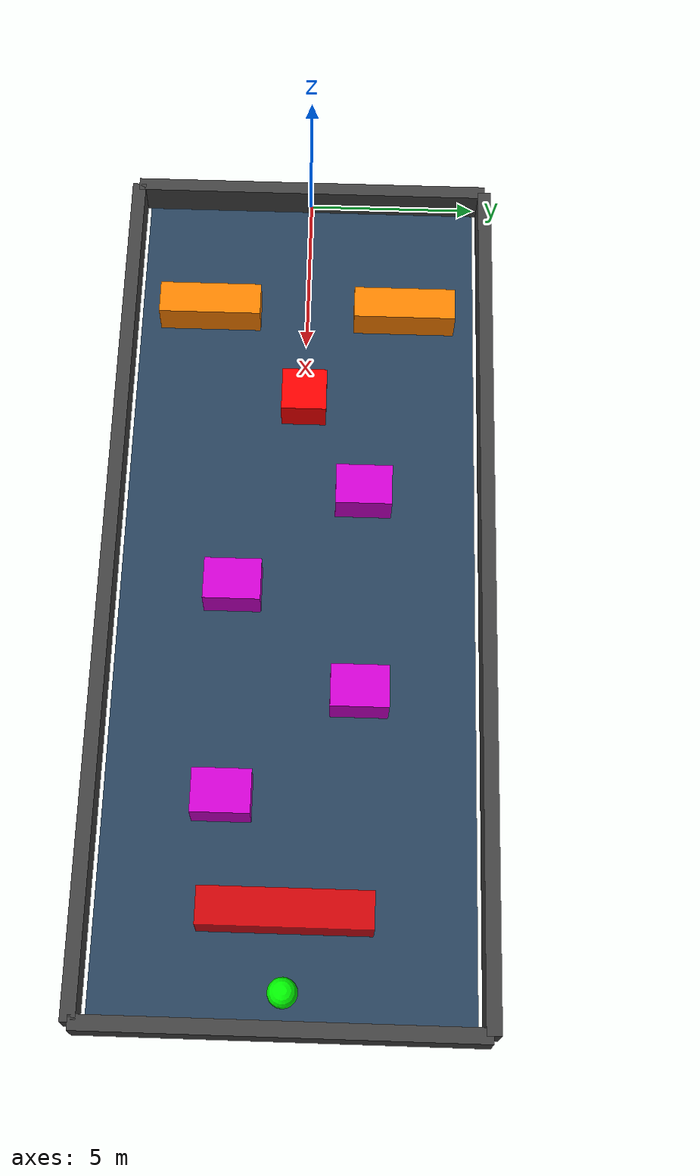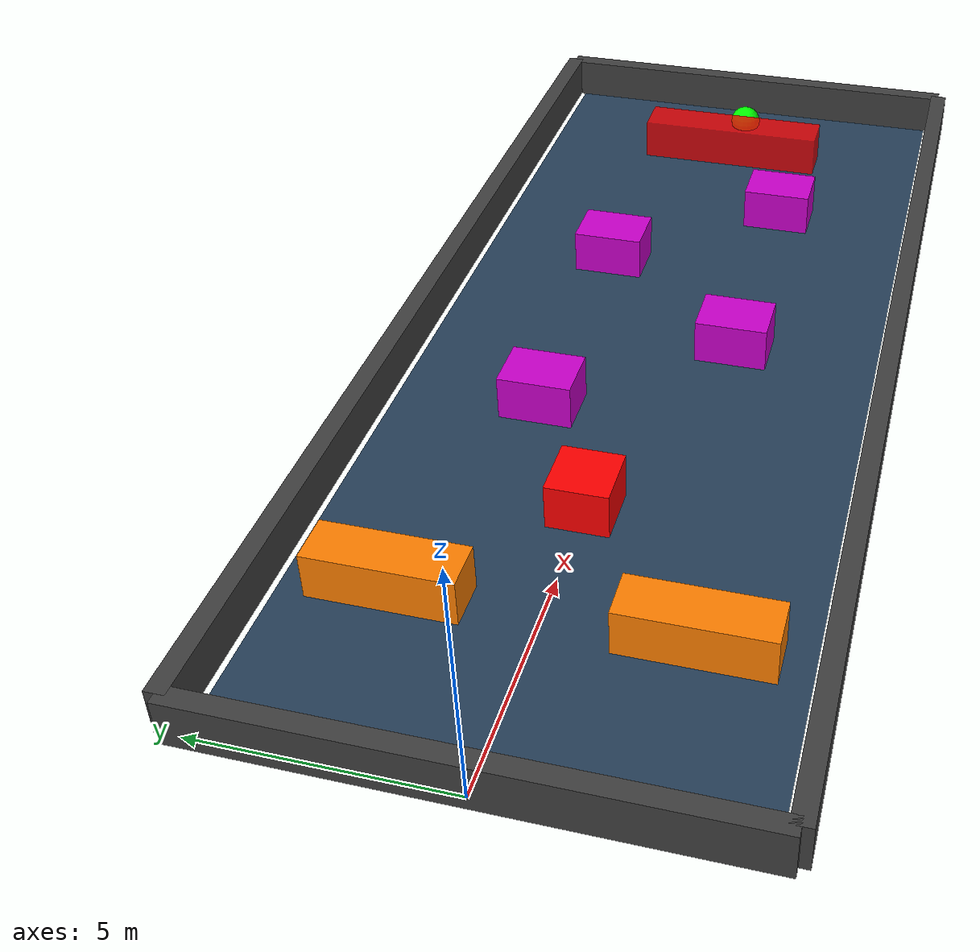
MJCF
<mujoco model="Empty_Corridor2_25m">

  <!-- COMPILER + OPTION -->
  <compiler angle="radian" coordinate="local" autolimits="true"/>
  <option timestep="0.01" cone="elliptic" integrator="RK4" gravity="0 0 -9.81"/>

  <!-- VISUAL STYLE (bunker style) -->
  <visual>
    <headlight diffuse="0.6 0.6 0.6"
               ambient="0.1 0.1 0.1"
               specular="0 0 0"/>

    <rgba haze="0.15 0.25 0.35 1"/>

    <global azimuth="135"
            elevation="-28"/>
  </visual>

  <!-- ASSETS (ground texture style giống bunker) -->
  <asset>
    <texture type="skybox"
             builtin="gradient"
             rgb1="0.3 0.5 0.7"
             rgb2="0 0 0"
             width="512"
             height="3072"/>

    <texture type="2d"
             name="groundplane"
             builtin="checker"
             mark="edge"
             rgb1="0.2 0.3 0.4"
             rgb2="0.1 0.2 0.3"
             markrgb="0.8 0.8 0.8"
             width="300"
             height="300"/>

    <material name="groundplane"
              texture="groundplane"
              texuniform="true"
              texrepeat="5 5"
              reflectance="0.2"/>
  </asset>

  <!-- WORLD -->
  <worldbody>

    <!-- LIGHT -->
    <light name="spotlight"
           pos="0 0 100"
           mode="targetbodycom"
           target="goal"
           castshadow="false"/>

    <!-- FLOOR (giữ nguyên nhưng đổi style bunker) -->
    <geom name="floor"
          type="plane"
          pos="12.5 0 0"
          size="12.5 5 0.05"
          material="groundplane"
          conaffinity="1"
          condim="3"/>

        <!-- WALLS -->
        <geom type="box" pos="12.5 5.3 0.5" size="12.5 0.2 0.5" rgba="0.25 0.25 0.25 1"/>
        <geom type="box" pos="12.5 -5.3 0.5" size="12.5 0.2 0.5" rgba="0.25 0.25 0.25 1"/>
        <geom type="box" pos="0 0 0.5" size="0.2 5.3 0.5" rgba="0.25 0.25 0.25 1"/>
        <geom type="box" pos="25 0 0.5" size="0.2 5.3 0.5" rgba="0.25 0.25 0.25 1"/>

        <!-- SAME OBSTACLES - SHUFFLED -->

        <!-- trước: mid left/right -> giờ chuyển lên đầu -->
        <geom type="box" pos="4  2.9 0.5" size="0.5 1.5 0.5" rgba="1 0.5 0 1"/>
        <geom type="box" pos="4 -2.9 0.5" size="0.5 1.5 0.5" rgba="1 0.5 0 1"/>

        <!-- trước: single center -> chuyển sang 9 -->
        <geom type="box" pos="7 0 0.5" size="0.65 0.65 0.5" rgba="1 0 0 1"/>

        <!-- trước: hard zone 16–28 -> giữ nhưng đổi pattern -->
        <geom type="box" pos="10  1.8 0.5" size="0.6 0.8 0.5" rgba="0.8 0 0.8 1"/>
        <geom type="box" pos="13 -1.8 0.5" size="0.6 0.8 0.5" rgba="0.8 0 0.8 1"/>
        <geom type="box" pos="16  1.8 0.5" size="0.6 0.8 0.5" rgba="0.8 0 0.8 1"/>
        <geom type="box" pos="19 -1.8 0.5" size="0.6 0.8 0.5" rgba="0.8 0 0.8 1"/>

        <!-- trước: cuối gần goal -> chuyển lên mid-late -->
        <geom type="box" pos="22 0 0.5" size="0.5 2.3 0.5" rgba="1 0 0 0.8"/>

        <!-- GOAL -->
        <body name="goal" pos="24 0 0.1" mocap="true">
            <site name="goal_site" type="sphere" size="0.4" rgba="0 1 0 0.9"/>
        </body>

    </worldbody>
</mujoco>
